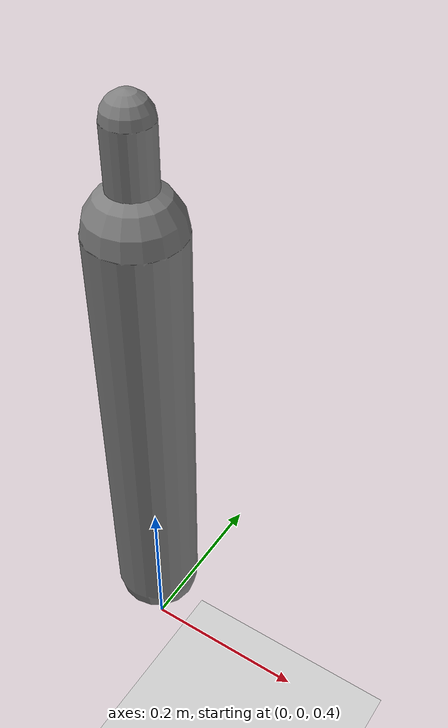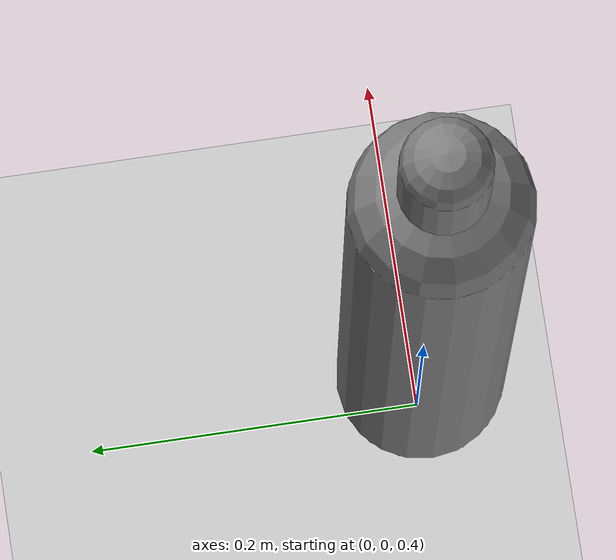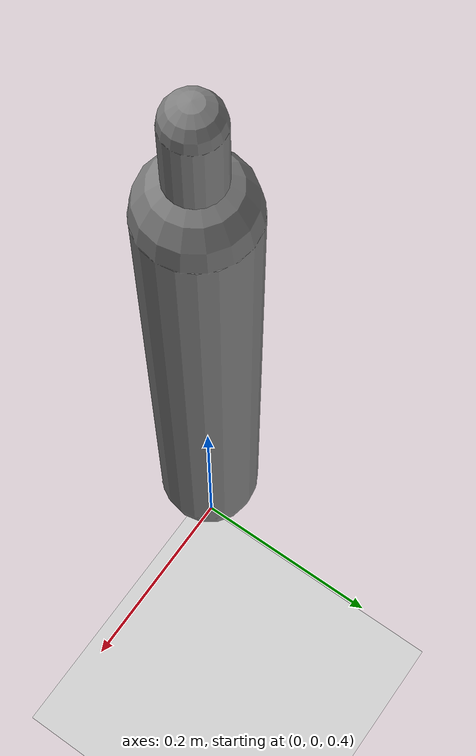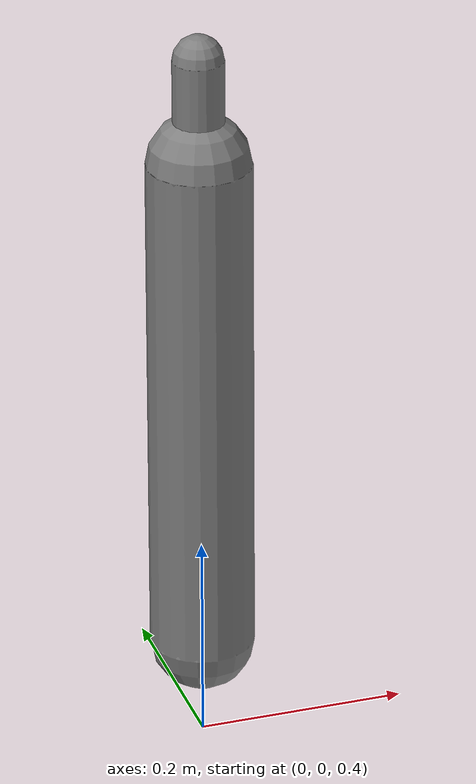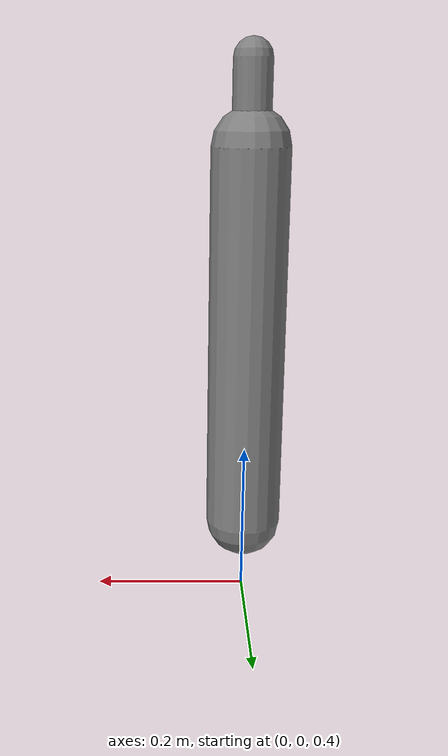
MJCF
<?xml version='1.0' encoding='UTF-8'?>
<mujoco model="RobotModel">
  <option gravity="0 0 -9.81" timestep="0.002" solver="CG" iterations="500" integrator="Euler"/>
  <worldbody>
    <geom name="Floor" type="plane" size="10 10 0.1" pos="0 0 0" rgba="0.8 0.8 0.8 1"/>
    <body name="Limb0" pos="0 0 0.5">
      <geom type="capsule" fromto="0 0 0 0 0 0.5" size="0.05" density="1000" contype="0" conaffinity="0"/>
      <body name="Limb0_9e9feb19" pos="0 0 0.5">
        <geom type="capsule" fromto="0 0 0 0 0 0.10406866006561706" size="0.024460920215951518" density="800" contype="0" conaffinity="0"/>
        <joint name="Joint_Limb0_Limb0_9e9feb19_0" type="hinge" axis="1 0 0" range="-60 60"/>
      </body>
    </body>
  </worldbody>
  <actuator>
    <position name="position_Actuator_Joint_Limb0_Limb0_9e9feb19_0" joint="Joint_Limb0_Limb0_9e9feb19_0" gear="1.0"/>
  </actuator>
</mujoco>
